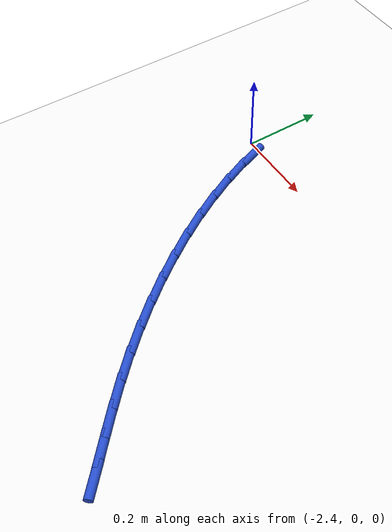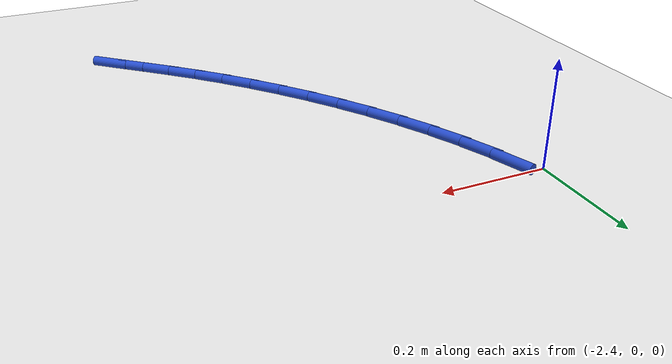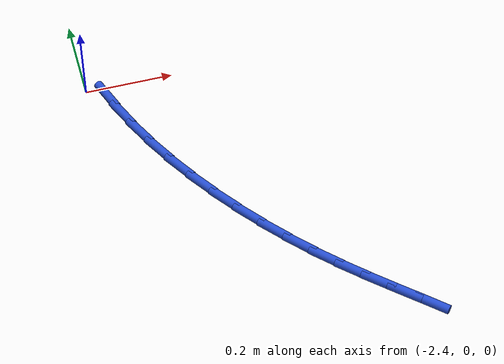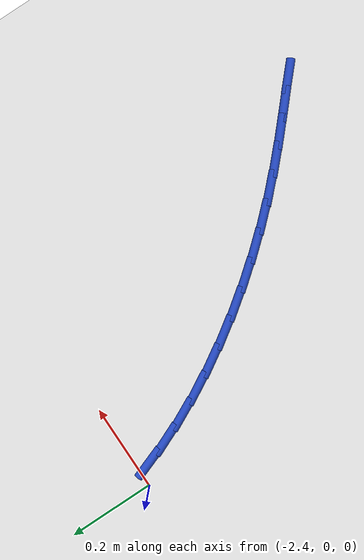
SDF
<sdf version="1.6">
 <world name="default">
  <model name="ground_plane">
   <static>1</static>
   <link name="link">
    <collision name="collision">
     <geometry><plane><normal>0 0 1</normal><size>100 100</size></plane></geometry>
     <surface><friction><ode><mu>100</mu><mu2>50</mu2></ode></friction></surface>
    </collision>
    <visual name="visual">
     <cast_shadows>0</cast_shadows>
     <geometry><plane><normal>0 0 1</normal><size>100 100</size></plane></geometry>
     <material>
      <script><uri>file://media/materials/scripts/gazebo.material</uri><name>Gazebo/WhiteGlow</name></script>
     </material>
    </visual>
   </link>
  </model>
  <model name="line">
   <link name="link_61">
    <pose>-2.3563869437890452 -0.028694842168300223 0.01 0 1.57 -1.2171329033695077</pose>
    <collision name="collision">
     <geometry><cylinder><radius>0.01</radius><length>0.08</length></cylinder></geometry>
    </collision>
    <visual name="visual">
     <material>
      <script><name>Gazebo/Blue</name><uri>file://media/materials/scripts/gazebo.material</uri></script>
     </material>
     <geometry><cylinder><radius>0.01</radius><length>0.08</length></cylinder></geometry>
    </visual>
   </link>
   <link name="link_62">
    <pose>-2.333962790487806 -0.0894343492621 0.01 0 1.57 -1.1584764780040921</pose>
    <collision name="collision">
     <geometry><cylinder><radius>0.01</radius><length>0.08</length></cylinder></geometry>
    </collision>
    <visual name="visual">
     <material>
      <script><name>Gazebo/Blue</name><uri>file://media/materials/scripts/gazebo.material</uri></script>
     </material>
     <geometry><cylinder><radius>0.01</radius><length>0.08</length></cylinder></geometry>
    </visual>
   </link>
   <link name="link_63">
    <pose>-2.307595528469632 -0.1497172481525192 0.01 0 1.57 -1.1050717694446028</pose>
    <collision name="collision">
     <geometry><cylinder><radius>0.01</radius><length>0.08</length></cylinder></geometry>
    </collision>
    <visual name="visual">
     <material>
      <script><name>Gazebo/Blue</name><uri>file://media/materials/scripts/gazebo.material</uri></script>
     </material>
     <geometry><cylinder><radius>0.01</radius><length>0.08</length></cylinder></geometry>
    </visual>
   </link>
   <link name="link_64">
    <pose>-2.2776567873217566 -0.20928511003919656 0.01 0 1.57 -1.056086119252341</pose>
    <collision name="collision">
     <geometry><cylinder><radius>0.01</radius><length>0.08</length></cylinder></geometry>
    </collision>
    <visual name="visual">
     <material>
      <script><name>Gazebo/Blue</name><uri>file://media/materials/scripts/gazebo.material</uri></script>
     </material>
     <geometry><cylinder><radius>0.01</radius><length>0.08</length></cylinder></geometry>
    </visual>
   </link>
   <link name="link_65">
    <pose>-2.244518196631412 -0.26787950612177336 0.01 0 1.57 -1.0107535670130414</pose>
    <collision name="collision">
     <geometry><cylinder><radius>0.01</radius><length>0.08</length></cylinder></geometry>
    </collision>
    <visual name="visual">
     <material>
      <script><name>Gazebo/Blue</name><uri>file://media/materials/scripts/gazebo.material</uri></script>
     </material>
     <geometry><cylinder><radius>0.01</radius><length>0.08</length></cylinder></geometry>
    </visual>
   </link>
   <link name="link_66">
    <pose>-2.2085513859858295 -0.32524200759989075 0.01 0 1.57 -0.9683719187356172</pose>
    <collision name="collision">
     <geometry><cylinder><radius>0.01</radius><length>0.08</length></cylinder></geometry>
    </collision>
    <visual name="visual">
     <material>
      <script><name>Gazebo/Blue</name><uri>file://media/materials/scripts/gazebo.material</uri></script>
     </material>
     <geometry><cylinder><radius>0.01</radius><length>0.08</length></cylinder></geometry>
    </visual>
   </link>
   <link name="link_67">
    <pose>-2.1701279849722437 -0.3811141856731876 0.01 0 1.57 -0.9282917020035046</pose>
    <collision name="collision">
     <geometry><cylinder><radius>0.01</radius><length>0.08</length></cylinder></geometry>
    </collision>
    <visual name="visual">
     <material>
      <script><name>Gazebo/Blue</name><uri>file://media/materials/scripts/gazebo.material</uri></script>
     </material>
     <geometry><cylinder><radius>0.01</radius><length>0.08</length></cylinder></geometry>
    </visual>
   </link>
   <link name="link_68">
    <pose>-2.129619623177886 -0.43523761154130514 0.01 0 1.57 -0.8899002062386412</pose>
    <collision name="collision">
     <geometry><cylinder><radius>0.01</radius><length>0.08</length></cylinder></geometry>
    </collision>
    <visual name="visual">
     <material>
      <script><name>Gazebo/Blue</name><uri>file://media/materials/scripts/gazebo.material</uri></script>
     </material>
     <geometry><cylinder><radius>0.01</radius><length>0.08</length></cylinder></geometry>
    </visual>
   </link>
   <link name="link_69">
    <pose>-2.0873979301899888 -0.48735385640388384 0.01 0 1.57 -0.8526019070219563</pose>
    <collision name="collision">
     <geometry><cylinder><radius>0.01</radius><length>0.08</length></cylinder></geometry>
    </collision>
    <visual name="visual">
     <material>
      <script><name>Gazebo/Blue</name><uri>file://media/materials/scripts/gazebo.material</uri></script>
     </material>
     <geometry><cylinder><radius>0.01</radius><length>0.08</length></cylinder></geometry>
    </visual>
   </link>
   <link name="link_70">
    <pose>-2.043834535595784 -0.5372044914605647 0.01 0 1.57 -0.8157951545204709</pose>
    <collision name="collision">
     <geometry><cylinder><radius>0.01</radius><length>0.08</length></cylinder></geometry>
    </collision>
    <visual name="visual">
     <material>
      <script><name>Gazebo/Blue</name><uri>file://media/materials/scripts/gazebo.material</uri></script>
     </material>
     <geometry><cylinder><radius>0.01</radius><length>0.08</length></cylinder></geometry>
    </visual>
   </link>
   <link name="link_71">
    <pose>-1.9993010689825055 -0.5845310879109868 0.01 0 1.57 -0.7792602652814482</pose>
    <collision name="collision">
     <geometry><cylinder><radius>0.01</radius><length>0.08</length></cylinder></geometry>
    </collision>
    <visual name="visual">
     <material>
      <script><name>Gazebo/Blue</name><uri>file://media/materials/scripts/gazebo.material</uri></script>
     </material>
     <geometry><cylinder><radius>0.01</radius><length>0.08</length></cylinder></geometry>
    </visual>
   </link>
   <link name="link_72">
    <pose>-1.9541626724530043 -0.629118748129691 0.01 0 1.57 -0.7490247023554935</pose>
    <collision name="collision">
     <geometry><cylinder><radius>0.01</radius><length>0.08</length></cylinder></geometry>
    </collision>
    <visual name="visual">
     <material>
      <script><name>Gazebo/Blue</name><uri>file://media/materials/scripts/gazebo.material</uri></script>
     </material>
     <geometry><cylinder><radius>0.01</radius><length>0.08</length></cylinder></geometry>
    </visual>
   </link>
   <link name="link_73">
    <pose>-1.9086879978302806 -0.6714000265700117 0.01 0 1.57 -0.7309858809102586</pose>
    <collision name="collision">
     <geometry><cylinder><radius>0.01</radius><length>0.08</length></cylinder></geometry>
    </collision>
    <visual name="visual">
     <material>
      <script><name>Gazebo/Blue</name><uri>file://media/materials/scripts/gazebo.material</uri></script>
     </material>
     <geometry><cylinder><radius>0.01</radius><length>0.08</length></cylinder></geometry>
    </visual>
   </link>
   <link name="link_74">
    <pose>-1.8630717149229212 -0.7123038987662225 0.01 0 1.57 -0.7262226417089268</pose>
    <collision name="collision">
     <geometry><cylinder><radius>0.01</radius><length>0.08</length></cylinder></geometry>
    </collision>
    <visual name="visual">
     <material>
      <script><name>Gazebo/Blue</name><uri>file://media/materials/scripts/gazebo.material</uri></script>
     </material>
     <geometry><cylinder><radius>0.01</radius><length>0.08</length></cylinder></geometry>
    </visual>
   </link>
   <link name="link_75">
    <pose>-1.8175066075067097 -0.7527719955777006 0.01 0 1.57 -0.7350647830804365</pose>
    <collision name="collision">
     <geometry><cylinder><radius>0.01</radius><length>0.08</length></cylinder></geometry>
    </collision>
    <visual name="visual">
     <material>
      <script><name>Gazebo/Blue</name><uri>file://media/materials/scripts/gazebo.material</uri></script>
     </material>
     <geometry><cylinder><radius>0.01</radius><length>0.08</length></cylinder></geometry>
    </visual>
   </link>
  </model>
 </world>
</sdf>
